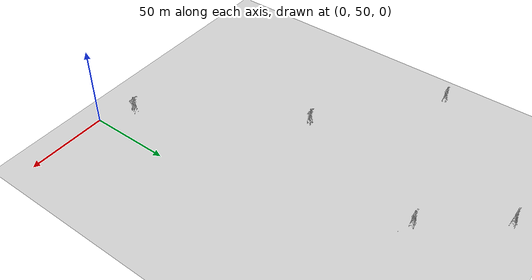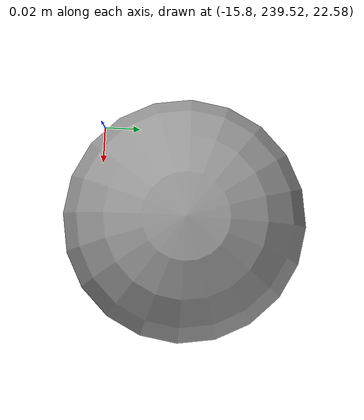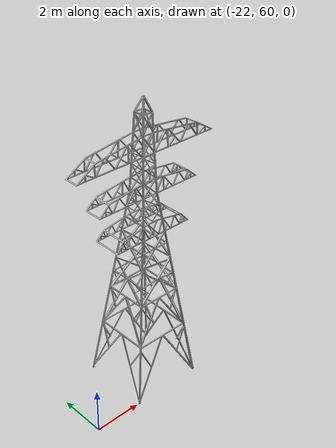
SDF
<sdf version="1.7">
 <world name="default">
  <light name="sun" type="directional">
   <pose>0 0 10 0 -0 0</pose>
   <diffuse>0.8 0.8 0.8 1</diffuse>
   <specular>0.2 0.2 0.2 1</specular>
   <attenuation>
    <range>1000</range>
    <constant>0.9</constant>
    <linear>0.01</linear>
    <quadratic>0.001</quadratic>
   </attenuation>
   <direction>-0.5 0.1 -0.9</direction>
   <spot><inner_angle>0</inner_angle><outer_angle>0</outer_angle><falloff>0</falloff></spot>
  </light>
  <model name="ground_plane">
   <static>1</static>
   <link name="link">
    <collision name="collision">
     <geometry><plane><normal>0 0 1</normal><size>100 100</size></plane></geometry>
     <surface><friction><ode><mu>100</mu><mu2>50</mu2></ode></friction></surface>
    </collision>
    <visual name="visual">
     <cast_shadows>0</cast_shadows>
     <geometry><plane><normal>0 0 1</normal><size>100 100</size></plane></geometry>
     <material>
      <script><uri>file://media/materials/scripts/gazebo.material</uri><name>Gazebo/Grey</name></script>
     </material>
    </visual>
   </link>
  </model>
  <gravity>0 0 -9.8</gravity>
  <magnetic_field>6e-06 2.3e-05 -4.2e-05</magnetic_field>
  <atmosphere type="adiabatic"/>
  <physics type="ode">
   <max_step_size>0.001</max_step_size>
   <real_time_factor>1</real_time_factor>
   <real_time_update_rate>1000</real_time_update_rate>
  </physics>
  <scene><ambient>0.4 0.4 0.4 1</ambient><background>0.7 0.7 0.7 1</background><shadows>1</shadows></scene>
  <spherical_coordinates>
   <surface_model>EARTH_WGS84</surface_model>
   <latitude_deg>0</latitude_deg>
   <longitude_deg>0</longitude_deg>
   <elevation>0</elevation>
   <heading_deg>0</heading_deg>
  </spherical_coordinates>
  <model name="torrona">
   <static>1</static>
   <link name="link">
    <collision name="collision">
     <geometry><mesh><scale>0.1 0.1 0.1</scale><uri>model://torrona/meshes/torrona.stl</uri></mesh></geometry>
    </collision>
    <visual name="visual">
     <geometry><mesh><scale>0.1 0.1 0.1</scale><uri>model://torrona/meshes/torrona.stl</uri></mesh></geometry>
    </visual>
   </link>
   <pose>-19.9351 59.8366 0 0 -0 0</pose>
  </model>
  <model name="torrona_clone">
   <static>1</static>
   <link name="link">
    <collision name="collision">
     <geometry><mesh><scale>0.1 0.1 0.1</scale><uri>model://torrona/meshes/torrona.stl</uri></mesh></geometry>
    </collision>
    <visual name="visual">
     <geometry><mesh><scale>0.1 0.1 0.1</scale><uri>model://torrona/meshes/torrona.stl</uri></mesh></geometry>
    </visual>
   </link>
   <pose>-76.9707 149.675 -1.1583 0 -0 0</pose>
  </model>
  <model name="torrona_clone_clone">
   <static>1</static>
   <link name="link">
    <collision name="collision">
     <geometry><mesh><scale>0.1 0.1 0.1</scale><uri>model://torrona/meshes/torrona.stl</uri></mesh></geometry>
    </collision>
    <visual name="visual">
     <geometry><mesh><scale>0.1 0.1 0.1</scale><uri>model://torrona/meshes/torrona.stl</uri></mesh></geometry>
    </visual>
   </link>
   <pose>-145.329 204.481 -1.1583 0 -0 0</pose>
  </model>
  <model name="torrona_clone_clone_clone">
   <static>1</static>
   <link name="link">
    <collision name="collision">
     <geometry><mesh><scale>0.1 0.1 0.1</scale><uri>model://torrona/meshes/torrona.stl</uri></mesh></geometry>
    </collision>
    <visual name="visual">
     <geometry><mesh><scale>0.1 0.1 0.1</scale><uri>model://torrona/meshes/torrona.stl</uri></mesh></geometry>
    </visual>
   </link>
   <pose>-34.103 238.625 10.3422 0 -0 0</pose>
  </model>
  <model name="torrona_clone_clone_clone_clone">
   <static>1</static>
   <link name="link">
    <collision name="collision">
     <geometry><mesh><scale>0.1 0.1 0.1</scale><uri>model://torrona/meshes/torrona.stl</uri></mesh></geometry>
    </collision>
    <visual name="visual">
     <geometry><mesh><scale>0.1 0.1 0.1</scale><uri>model://torrona/meshes/torrona.stl</uri></mesh></geometry>
    </visual>
   </link>
   <pose>-57.8016 278.48 18.0276 0 -0 0</pose>
  </model>
  <model name="unit_sphere">
   <pose>-15.7463 239.568 22.6378 -0.016331 -0 0</pose>
   <link name="link">
    <inertial>
     <mass>1</mass>
     <inertia><ixx>0.1</ixx><ixy>0</ixy><ixz>0</ixz><iyy>0.1</iyy><iyz>0</iyz><izz>0.1</izz></inertia>
    </inertial>
    <collision name="collision"><geometry><sphere><radius>0.0579678</radius></sphere></geometry></collision>
    <visual name="visual">
     <geometry><sphere><radius>0.0579678</radius></sphere></geometry>
     <material>
      <script><name>Gazebo/Grey</name><uri>file://media/materials/scripts/gazebo.material</uri></script>
     </material>
    </visual>
   </link>
  </model>
 </world>
</sdf>
